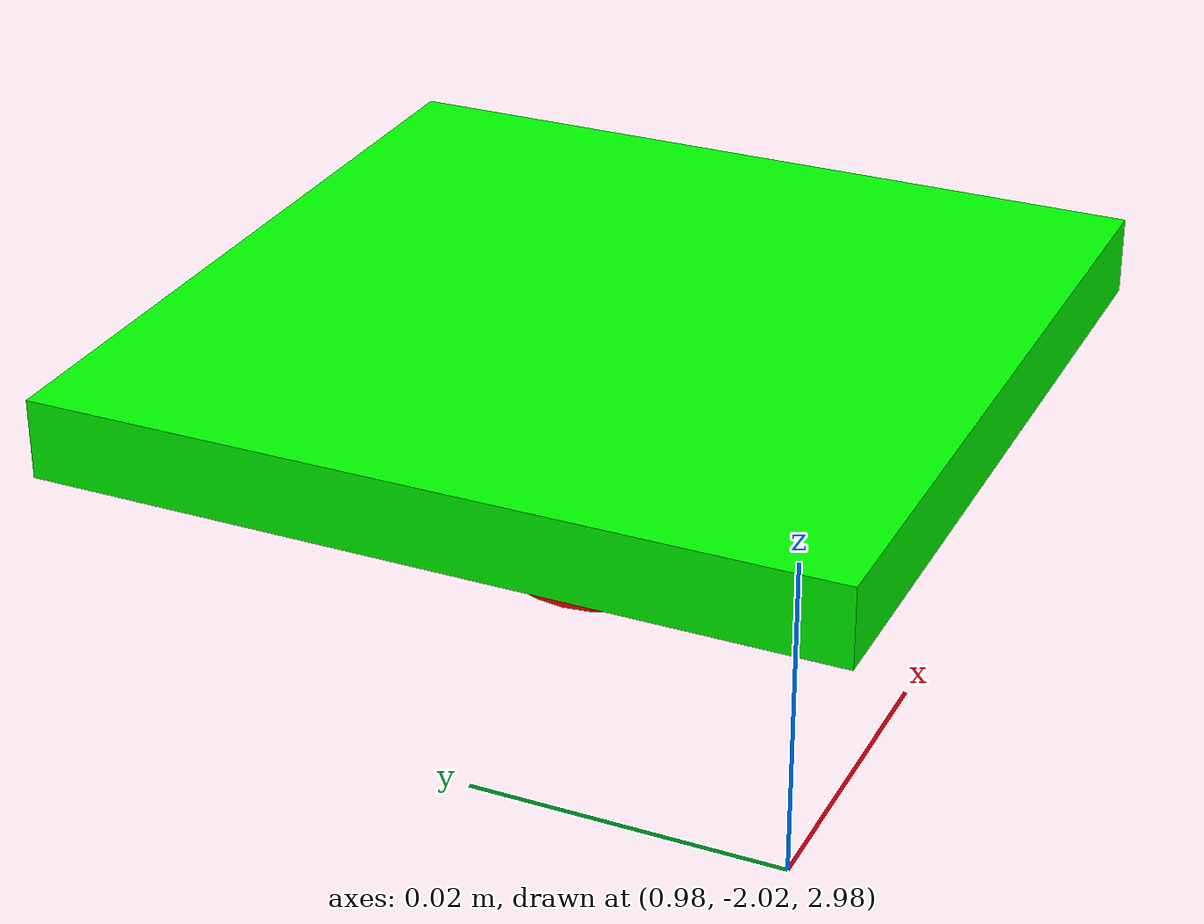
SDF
<?xml version="1.0" ?>
<sdf version="1.4">
  <model name="pixy_camera">
    <pose>1.0 -2.0 3.0 0 1.57 0</pose>
    <static>true</static>
    <link name="platine">
      <inertial>
        <mass>0.01</mass>
        <inertia>
          <ixx>4.15e-6</ixx>
          <ixy>0</ixy>
          <ixz>0</ixz>
          <iyy>2.407e-6</iyy>
          <iyz>0</iyz>
          <izz>2.407e-6</izz>
        </inertia>
      </inertial>

      <visual name='platine'>
        <geometry>
          <box>
            <size>0.05 0.05 0.005</size>
          </box>
        </geometry>
        <material>
          <shader type='pixel'>
            <normal_map>__default__</normal_map>
          </shader>
          <ambient>1 1 1 1</ambient>
          <diffuse>0 1 0 0</diffuse>
          <specular>0 1 0 0</specular>
          <emissive>0 1 0 0</emissive>
          <script>
            <name>ModelPreview_1::platine::platine_MATERIAL_</name>
          </script>
        </material>
        <pose frame=''>0 0 0 0 1.57079 0</pose>
        <cast_shadows>1</cast_shadows>
        <transparency>0</transparency>
      </visual>

      <visual name='lens'>
        <pose frame=''>0.0075 0 0 0 1.57079 0</pose>
        <geometry>
          <cylinder>
            <radius>0.007</radius>
            <length>0.015</length>
          </cylinder>
        </geometry>
        <material>
          <shader type='pixel'>
            <normal_map>__default__</normal_map>
          </shader>
          <ambient>1 0 0 0</ambient>
          <diffuse>1 0 0 0</diffuse>
          <specular>1 0 0 0</specular>
          <emissive>1 0 0 0</emissive>
          <script>
            <name>ModelPreview_1::link::left_pt_visual_MATERIAL_</name>
          </script>
        </material>
        <cast_shadows>1</cast_shadows>
        <transparency>0</transparency>
      </visual>

  	  <sensor name="pixy" type="camera">
        <camera>
          <horizontal_fov>0.9136</horizontal_fov>

          <image>
            <width>318</width>
            <height>198</height>
          </image>

          <clip>
            <near>0.1</near>
            <far>100</far>
          </clip>

          <noise>
            <type>gaussian</type>
            <mean>0.0</mean>
            <stddev>0.01</stddev>
          </noise>

        </camera>
        <plugin name="PixyCameraPlugin" filename="libgazebo_pixy_cam_plugin.so"/>
        <always_on>1</always_on>
        <update_rate>10</update_rate>
        <visualize>1</visualize>
      </sensor>

    </link>
  </model>
</sdf>
